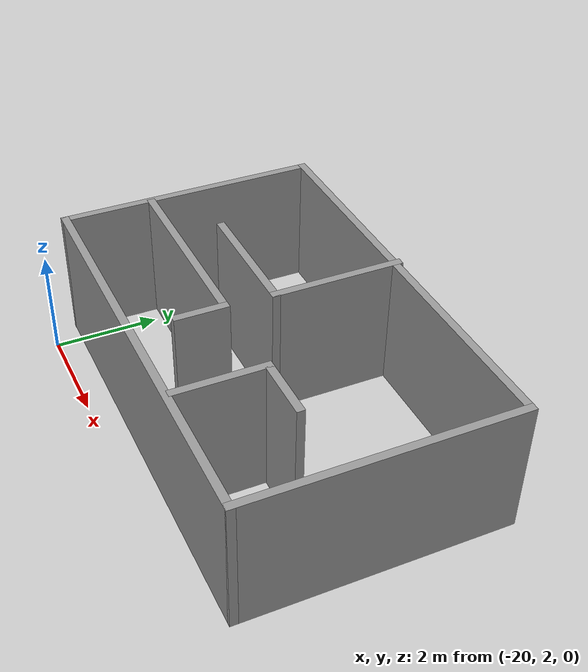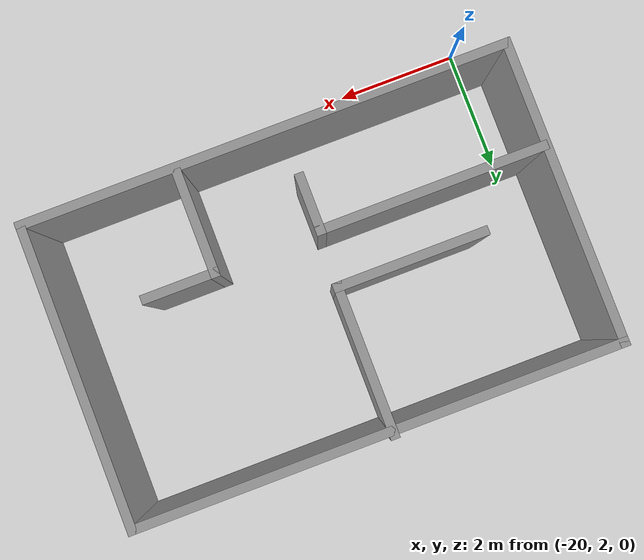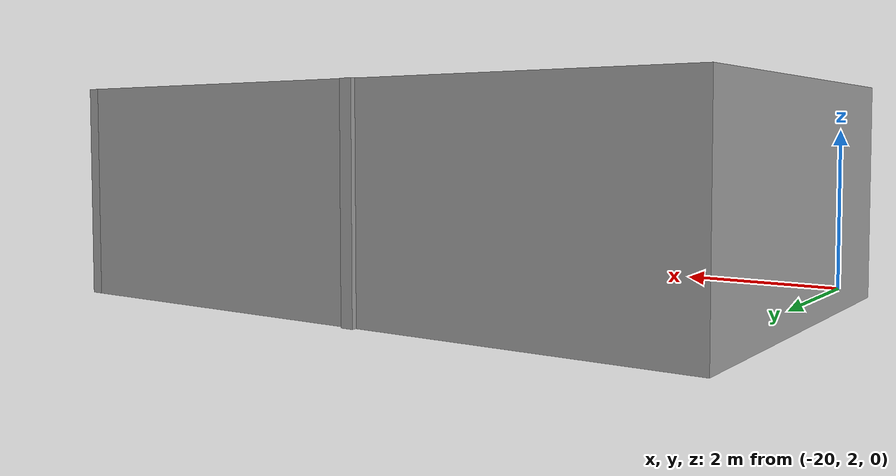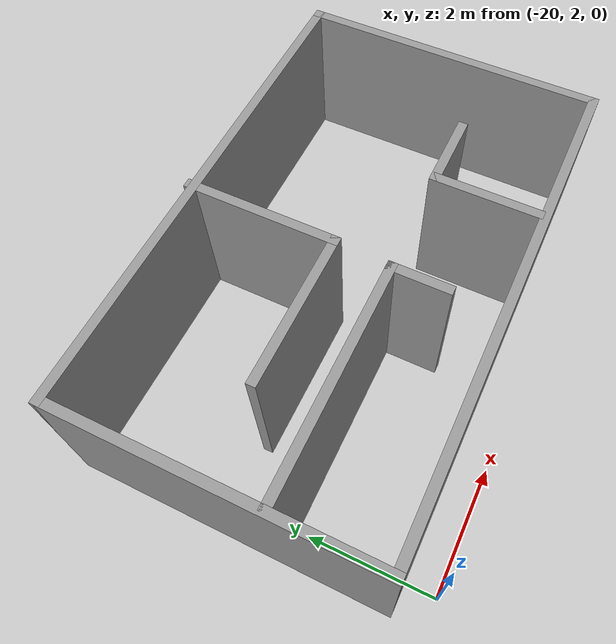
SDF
<?xml version='1.0'?>
<sdf version='1.7'>
  <model name='room'>
    <pose>-10.2409 3.77455 0 0 -0 0</pose>
    <link name='Wall_0'>
      <collision name='Wall_0_Collision'>
        <geometry>
          <box>
            <size>8 0.15 2.5</size>
          </box>
        </geometry>
        <pose>0 0 1.25 0 -0 0</pose>
      </collision>
      <visual name='Wall_0_Visual'>
        <pose>0 0 1.25 0 -0 0</pose>
        <geometry>
          <box>
            <size>8 0.15 2.5</size>
          </box>
        </geometry>
        <material>
          <script>
            <uri>file://media/materials/scripts/gazebo.material</uri>
            <name>Gazebo/Grey</name>
          </script>
          <ambient>1 1 1 1</ambient>
        </material>
        <meta>
          <layer>0</layer>
        </meta>
      </visual>
      <pose>-6.24089 3.64101 0 0 -0 3.14159</pose>
    </link>
    <link name='Wall_12'>
      <collision name='Wall_12_Collision'>
        <geometry>
          <box>
            <size>3.75 0.15 2.5</size>
          </box>
        </geometry>
        <pose>0 0 1.25 0 -0 0</pose>
      </collision>
      <visual name='Wall_12_Visual'>
        <pose>0 0 1.25 0 -0 0</pose>
        <geometry>
          <box>
            <size>3.75 0.15 2.5</size>
          </box>
        </geometry>
        <material>
          <script>
            <uri>file://media/materials/scripts/gazebo.material</uri>
            <name>Gazebo/Grey</name>
          </script>
          <ambient>1 1 1 1</ambient>
        </material>
        <meta>
          <layer>0</layer>
        </meta>
      </visual>
      <pose>-8.31247 0.456553 0 0 -0 0</pose>
    </link>
    <link name='Wall_13'>
      <collision name='Wall_13_Collision'>
        <geometry>
          <box>
            <size>1 0.15 2.5</size>
          </box>
        </geometry>
        <pose>0 0 1.25 0 -0 0</pose>
      </collision>
      <visual name='Wall_13_Visual'>
        <pose>0 0 1.25 0 -0 0</pose>
        <geometry>
          <box>
            <size>1 0.15 2.5</size>
          </box>
        </geometry>
        <material>
          <script>
            <uri>file://media/materials/scripts/gazebo.material</uri>
            <name>Gazebo/Grey</name>
          </script>
          <ambient>1 1 1 1</ambient>
        </material>
        <meta>
          <layer>0</layer>
        </meta>
      </visual>
      <pose>-6.51246 0.031554 0 0 -0 -1.5708</pose>
    </link>
    <link name='Wall_15'>
      <collision name='Wall_15_Collision'>
        <geometry>
          <box>
            <size>1.75 0.15 2.5</size>
          </box>
        </geometry>
        <pose>0 0 1.25 0 -0 0</pose>
      </collision>
      <visual name='Wall_15_Visual'>
        <pose>0 0 1.25 0 -0 0</pose>
        <geometry>
          <box>
            <size>1.75 0.15 2.5</size>
          </box>
        </geometry>
        <material>
          <script>
            <uri>file://media/materials/scripts/gazebo.material</uri>
            <name>Gazebo/Grey</name>
          </script>
          <ambient>1 1 1 1</ambient>
        </material>
        <meta>
          <layer>0</layer>
        </meta>
      </visual>
      <pose>-4.79946 -0.307446 0 0 -0 1.5708</pose>
    </link>
    <link name='Wall_16'>
      <collision name='Wall_16_Collision'>
        <geometry>
          <box>
            <size>1.25 0.15 2.5</size>
          </box>
        </geometry>
        <pose>0 0 1.25 0 -0 0</pose>
      </collision>
      <visual name='Wall_16_Visual'>
        <pose>0 0 1.25 0 -0 0</pose>
        <geometry>
          <box>
            <size>1.25 0.15 2.5</size>
          </box>
        </geometry>
        <material>
          <script>
            <uri>file://media/materials/scripts/gazebo.material</uri>
            <name>Gazebo/Grey</name>
          </script>
          <ambient>1 1 1 1</ambient>
        </material>
        <meta>
          <layer>0</layer>
        </meta>
      </visual>
      <pose>-4.24946 0.492553 0 0 -0 0</pose>
    </link>
    <link name='Wall_3'>
      <collision name='Wall_3_Collision'>
        <geometry>
          <box>
            <size>5 0.15 2.5</size>
          </box>
        </geometry>
        <pose>0 0 1.25 0 -0 0</pose>
      </collision>
      <visual name='Wall_3_Visual'>
        <pose>0 0 1.25 0 -0 0</pose>
        <geometry>
          <box>
            <size>5 0.15 2.5</size>
          </box>
        </geometry>
        <material>
          <script>
            <uri>file://media/materials/scripts/gazebo.material</uri>
            <name>Gazebo/Grey</name>
          </script>
          <ambient>1 1 1 1</ambient>
        </material>
        <meta>
          <layer>0</layer>
        </meta>
      </visual>
      <pose>-2.31589 1.21601 0 0 -0 -1.5708</pose>
    </link>
    <link name='Wall_5'>
      <collision name='Wall_5_Collision'>
        <geometry>
          <box>
            <size>5 0.15 2.5</size>
          </box>
        </geometry>
        <pose>0 0 1.25 0 -0 0</pose>
      </collision>
      <visual name='Wall_5_Visual'>
        <pose>0 0 1.25 0 -0 0</pose>
        <geometry>
          <box>
            <size>5 0.15 2.5</size>
          </box>
        </geometry>
        <material>
          <script>
            <uri>file://media/materials/scripts/gazebo.material</uri>
            <name>Gazebo/Grey</name>
          </script>
          <ambient>1 1 1 1</ambient>
        </material>
        <meta>
          <layer>0</layer>
        </meta>
      </visual>
      <pose>-10.1659 1.21601 0 0 -0 -1.5708</pose>
    </link>
    <link name='Wall_6'>
      <collision name='Wall_6_Collision'>
        <geometry>
          <box>
            <size>8 0.15 2.5</size>
          </box>
        </geometry>
        <pose>0 0 1.25 0 -0 0</pose>
      </collision>
      <visual name='Wall_6_Visual'>
        <pose>0 0 1.25 0 -0 0</pose>
        <geometry>
          <box>
            <size>8 0.15 2.5</size>
          </box>
        </geometry>
        <material>
          <script>
            <uri>file://media/materials/scripts/gazebo.material</uri>
            <name>Gazebo/Grey</name>
          </script>
          <ambient>1 1 1 1</ambient>
        </material>
        <meta>
          <layer>0</layer>
        </meta>
      </visual>
      <pose>-6.24089 -1.20899 0 0 -0 0</pose>
    </link>
    <link name='Wall_8'>
      <collision name='Wall_8_Collision'>
        <geometry>
          <box>
            <size>2.5 0.15 2.5</size>
          </box>
        </geometry>
        <pose>0 0 1.25 0 -0 0</pose>
      </collision>
      <visual name='Wall_8_Visual'>
        <pose>0 0 1.25 0 -0 0</pose>
        <geometry>
          <box>
            <size>2.5 0.15 2.5</size>
          </box>
        </geometry>
        <material>
          <script>
            <uri>file://media/materials/scripts/gazebo.material</uri>
            <name>Gazebo/Grey</name>
          </script>
          <ambient>1 1 1 1</ambient>
        </material>
        <meta>
          <layer>0</layer>
        </meta>
      </visual>
      <pose>-6.45547 2.52455 0 0 -0 -1.5708</pose>
    </link>
    <link name='Wall_9'>
      <collision name='Wall_9_Collision'>
        <geometry>
          <box>
            <size>2.5 0.15 2.5</size>
          </box>
        </geometry>
        <pose>0 0 1.25 0 -0 0</pose>
      </collision>
      <visual name='Wall_9_Visual'>
        <pose>0 0 1.25 0 -0 0</pose>
        <geometry>
          <box>
            <size>2.5 0.15 2.5</size>
          </box>
        </geometry>
        <material>
          <script>
            <uri>file://media/materials/scripts/gazebo.material</uri>
            <name>Gazebo/Grey</name>
          </script>
          <ambient>1 1 1 1</ambient>
        </material>
        <meta>
          <layer>0</layer>
        </meta>
      </visual>
      <pose>-7.63047 1.34955 0 0 -0 3.14159</pose>
    </link>
    <static>1</static>
  </model>
</sdf>
